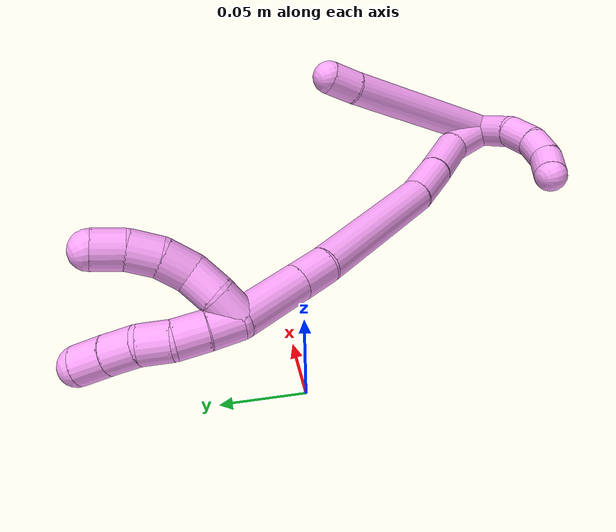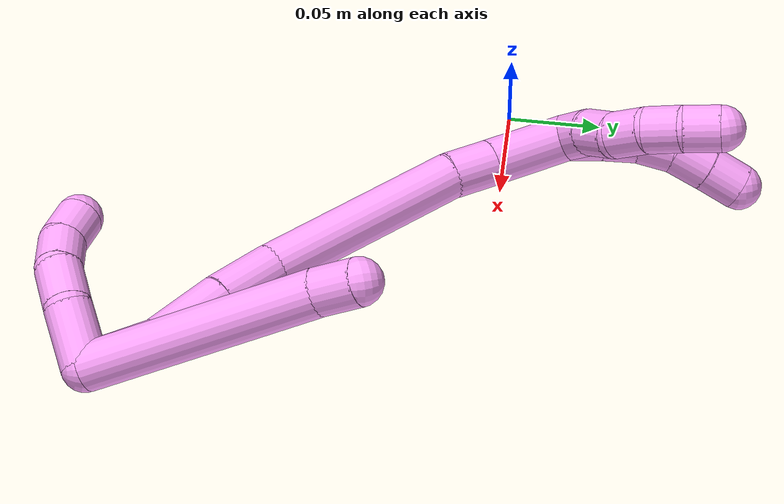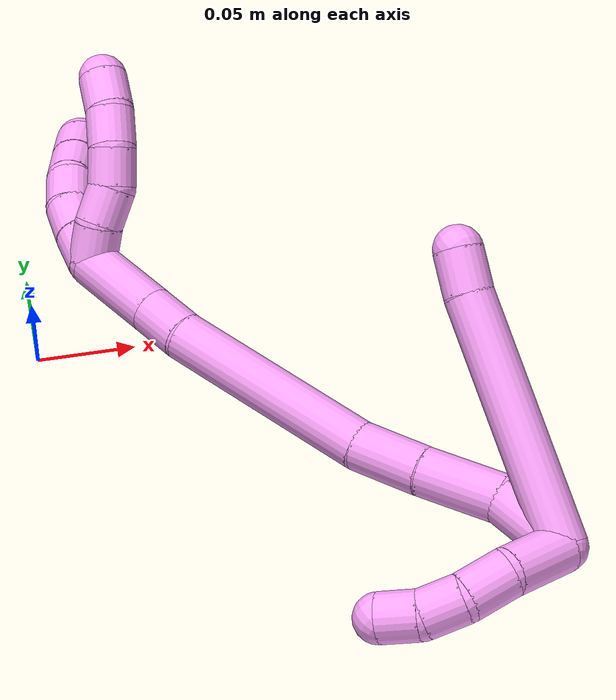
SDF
<sdf version="1.7">
 <world name="default">
  <model name="4">
   <static>0</static>
   <link name="4">
    <collision name="collision-cylinder-e_1_2_8">
     <pose>0.02626 -0.018918 -0.05494 2.80997 0.424469 1.82095</pose>
     <geometry><cylinder><radius>0.0125</radius><length>0.127528</length></cylinder></geometry>
     <surface>
      <friction><ode><mu>1.16</mu><mu2>1.16</mu2><slip1>0</slip1><slip2>0</slip2></ode></friction>
      <contact><ode><kp>1e+06</kp><kd>1</kd><max_vel>0</max_vel><min_depth>0.001</min_depth></ode></contact>
     </surface>
    </collision>
    <visual name="visual-cylinder-e_1_2_8">
     <pose>0.02626 -0.018918 -0.05494 2.80997 0.424469 1.82095</pose>
     <geometry><cylinder><radius>0.0125</radius><length>0.127528</length></cylinder></geometry>
     <material><ambient>1 0.65098 0.996078 1</ambient></material>
    </visual>
    <collision name="collision-cylinder-e_2_8_6">
     <pose>0.057114 -0.042398 -0.119062 2.68044 0.421146 1.47718</pose>
     <geometry><cylinder><radius>0.0125</radius><length>0.022472</length></cylinder></geometry>
     <surface>
      <friction><ode><mu>1.16</mu><mu2>1.16</mu2><slip1>0</slip1><slip2>0</slip2></ode></friction>
      <contact><ode><kp>1e+06</kp><kd>1</kd><max_vel>0</max_vel><min_depth>0.001</min_depth></ode></contact>
     </surface>
    </collision>
    <visual name="visual-cylinder-e_2_8_6">
     <pose>0.057114 -0.042398 -0.119062 2.68044 0.421146 1.47718</pose>
     <geometry><cylinder><radius>0.0125</radius><length>0.022472</length></cylinder></geometry>
     <material><ambient>1 0.65098 0.996078 1</ambient></material>
    </visual>
    <collision name="collision-cylinder-e_1_2_9">
     <pose>0.008988 0.014088 0.001308 -1.47819 0.565939 -0.518124</pose>
     <geometry><cylinder><radius>0.0125</radius><length>0.033523</length></cylinder></geometry>
     <surface>
      <friction><ode><mu>1.16</mu><mu2>1.16</mu2><slip1>0</slip1><slip2>0</slip2></ode></friction>
      <contact><ode><kp>1e+06</kp><kd>1</kd><max_vel>0</max_vel><min_depth>0.001</min_depth></ode></contact>
     </surface>
    </collision>
    <visual name="visual-cylinder-e_1_2_9">
     <pose>0.008988 0.014088 0.001308 -1.47819 0.565939 -0.518124</pose>
     <geometry><cylinder><radius>0.0125</radius><length>0.033523</length></cylinder></geometry>
     <material><ambient>1 0.65098 0.996078 1</ambient></material>
    </visual>
    <collision name="collision-cylinder-e_2_9_10">
     <pose>0.02106 0.03993 0.002611 -1.57128 0.256639 -0.256762</pose>
     <geometry><cylinder><radius>0.0125</radius><length>0.024306</length></cylinder></geometry>
     <surface>
      <friction><ode><mu>1.16</mu><mu2>1.16</mu2><slip1>0</slip1><slip2>0</slip2></ode></friction>
      <contact><ode><kp>1e+06</kp><kd>1</kd><max_vel>0</max_vel><min_depth>0.001</min_depth></ode></contact>
     </surface>
    </collision>
    <visual name="visual-cylinder-e_2_9_10">
     <pose>0.02106 0.03993 0.002611 -1.57128 0.256639 -0.256762</pose>
     <geometry><cylinder><radius>0.0125</radius><length>0.024306</length></cylinder></geometry>
     <material><ambient>1 0.65098 0.996078 1</ambient></material>
    </visual>
    <collision name="collision-cylinder-e_3_10_11">
     <pose>0.024845 0.062035 -0.000244 -1.83949 0.065075 -0.085394</pose>
     <geometry><cylinder><radius>0.0125</radius><length>0.021516</length></cylinder></geometry>
     <surface>
      <friction><ode><mu>1.16</mu><mu2>1.16</mu2><slip1>0</slip1><slip2>0</slip2></ode></friction>
      <contact><ode><kp>1e+06</kp><kd>1</kd><max_vel>0</max_vel><min_depth>0.001</min_depth></ode></contact>
     </surface>
    </collision>
    <visual name="visual-cylinder-e_3_10_11">
     <pose>0.024845 0.062035 -0.000244 -1.83949 0.065075 -0.085394</pose>
     <geometry><cylinder><radius>0.0125</radius><length>0.021516</length></cylinder></geometry>
     <material><ambient>1 0.65098 0.996078 1</ambient></material>
    </visual>
    <collision name="collision-cylinder-e_4_11_5">
     <pose>0.026139 0.080814 -0.009032 -2.18455 0.057591 -0.110939</pose>
     <geometry><cylinder><radius>0.0125</radius><length>0.020655</length></cylinder></geometry>
     <surface>
      <friction><ode><mu>1.16</mu><mu2>1.16</mu2><slip1>0</slip1><slip2>0</slip2></ode></friction>
      <contact><ode><kp>1e+06</kp><kd>1</kd><max_vel>0</max_vel><min_depth>0.001</min_depth></ode></contact>
     </surface>
    </collision>
    <visual name="visual-cylinder-e_4_11_5">
     <pose>0.026139 0.080814 -0.009032 -2.18455 0.057591 -0.110939</pose>
     <geometry><cylinder><radius>0.0125</radius><length>0.020655</length></cylinder></geometry>
     <material><ambient>1 0.65098 0.996078 1</ambient></material>
    </visual>
    <collision name="collision-cylinder-e_1_2_12">
     <pose>0.001052 0.003983 -0.019255 -2.93761 0.053452 -0.510979</pose>
     <geometry><cylinder><radius>0.0125</radius><length>0.039381</length></cylinder></geometry>
     <surface>
      <friction><ode><mu>1.16</mu><mu2>1.16</mu2><slip1>0</slip1><slip2>0</slip2></ode></friction>
      <contact><ode><kp>1e+06</kp><kd>1</kd><max_vel>0</max_vel><min_depth>0.001</min_depth></ode></contact>
     </surface>
    </collision>
    <visual name="visual-cylinder-e_1_2_12">
     <pose>0.001052 0.003983 -0.019255 -2.93761 0.053452 -0.510979</pose>
     <geometry><cylinder><radius>0.0125</radius><length>0.039381</length></cylinder></geometry>
     <material><ambient>1 0.65098 0.996078 1</ambient></material>
    </visual>
    <collision name="collision-cylinder-e_2_12_13">
     <pose>0.004382 0.018792 -0.056531 -2.60063 0.107926 -0.384791</pose>
     <geometry><cylinder><radius>0.0125</radius><length>0.042293</length></cylinder></geometry>
     <surface>
      <friction><ode><mu>1.16</mu><mu2>1.16</mu2><slip1>0</slip1><slip2>0</slip2></ode></friction>
      <contact><ode><kp>1e+06</kp><kd>1</kd><max_vel>0</max_vel><min_depth>0.001</min_depth></ode></contact>
     </surface>
    </collision>
    <visual name="visual-cylinder-e_2_12_13">
     <pose>0.004382 0.018792 -0.056531 -2.60063 0.107926 -0.384791</pose>
     <geometry><cylinder><radius>0.0125</radius><length>0.042293</length></cylinder></geometry>
     <material><ambient>1 0.65098 0.996078 1</ambient></material>
    </visual>
    <collision name="collision-cylinder-e_3_13_14">
     <pose>0.007657 0.037958 -0.090492 -2.65956 0.055364 -0.22436</pose>
     <geometry><cylinder><radius>0.0125</radius><length>0.036032</length></cylinder></geometry>
     <surface>
      <friction><ode><mu>1.16</mu><mu2>1.16</mu2><slip1>0</slip1><slip2>0</slip2></ode></friction>
      <contact><ode><kp>1e+06</kp><kd>1</kd><max_vel>0</max_vel><min_depth>0.001</min_depth></ode></contact>
     </surface>
    </collision>
    <visual name="visual-cylinder-e_3_13_14">
     <pose>0.007657 0.037958 -0.090492 -2.65956 0.055364 -0.22436</pose>
     <geometry><cylinder><radius>0.0125</radius><length>0.036032</length></cylinder></geometry>
     <material><ambient>1 0.65098 0.996078 1</ambient></material>
    </visual>
    <collision name="collision-cylinder-e_4_14_15">
     <pose>0.015584 0.064347 -0.158871 -2.81009 0.124321 -0.712392</pose>
     <geometry><cylinder><radius>0.0125</radius><length>0.111784</length></cylinder></geometry>
     <surface>
      <friction><ode><mu>1.16</mu><mu2>1.16</mu2><slip1>0</slip1><slip2>0</slip2></ode></friction>
      <contact><ode><kp>1e+06</kp><kd>1</kd><max_vel>0</max_vel><min_depth>0.001</min_depth></ode></contact>
     </surface>
    </collision>
    <visual name="visual-cylinder-e_4_14_15">
     <pose>0.015584 0.064347 -0.158871 -2.81009 0.124321 -0.712392</pose>
     <geometry><cylinder><radius>0.0125</radius><length>0.111784</length></cylinder></geometry>
     <material><ambient>1 0.65098 0.996078 1</ambient></material>
    </visual>
    <collision name="collision-cylinder-e_5_15_16">
     <pose>0.022909 0.084864 -0.223168 -2.9365 0.032576 -0.313972</pose>
     <geometry><cylinder><radius>0.0125</radius><length>0.024232</length></cylinder></geometry>
     <surface>
      <friction><ode><mu>1.16</mu><mu2>1.16</mu2><slip1>0</slip1><slip2>0</slip2></ode></friction>
      <contact><ode><kp>1e+06</kp><kd>1</kd><max_vel>0</max_vel><min_depth>0.001</min_depth></ode></contact>
     </surface>
    </collision>
    <visual name="visual-cylinder-e_5_15_16">
     <pose>0.022909 0.084864 -0.223168 -2.9365 0.032576 -0.313972</pose>
     <geometry><cylinder><radius>0.0125</radius><length>0.024232</length></cylinder></geometry>
     <material><ambient>1 0.65098 0.996078 1</ambient></material>
    </visual>
    <collision name="collision-cylinder-e_6_16_1">
     <pose>0.024286 0.092154 -0.257633 -2.93135 0.042469 -0.397264</pose>
     <geometry><cylinder><radius>0.0125</radius><length>0.046278</length></cylinder></geometry>
     <surface>
      <friction><ode><mu>1.16</mu><mu2>1.16</mu2><slip1>0</slip1><slip2>0</slip2></ode></friction>
      <contact><ode><kp>1e+06</kp><kd>1</kd><max_vel>0</max_vel><min_depth>0.001</min_depth></ode></contact>
     </surface>
    </collision>
    <visual name="visual-cylinder-e_6_16_1">
     <pose>0.024286 0.092154 -0.257633 -2.93135 0.042469 -0.397264</pose>
     <geometry><cylinder><radius>0.0125</radius><length>0.046278</length></cylinder></geometry>
     <material><ambient>1 0.65098 0.996078 1</ambient></material>
    </visual>
    <collision name="collision-cylinder-e_1_1_17">
     <pose>0.024505 0.095476 -0.290099 2.9903 -0.076491 -0.935068</pose>
     <geometry><cylinder><radius>0.0125</radius><length>0.02</length></cylinder></geometry>
     <surface>
      <friction><ode><mu>1.16</mu><mu2>1.16</mu2><slip1>0</slip1><slip2>0</slip2></ode></friction>
      <contact><ode><kp>1e+06</kp><kd>1</kd><max_vel>0</max_vel><min_depth>0.001</min_depth></ode></contact>
     </surface>
    </collision>
    <visual name="visual-cylinder-e_1_1_17">
     <pose>0.024505 0.095476 -0.290099 2.9903 -0.076491 -0.935068</pose>
     <geometry><cylinder><radius>0.0125</radius><length>0.02</length></cylinder></geometry>
     <material><ambient>1 0.65098 0.996078 1</ambient></material>
    </visual>
    <collision name="collision-cylinder-e_2_17_18">
     <pose>0.02268 0.091815 -0.309662 2.9228 -0.10622 -0.901527</pose>
     <geometry><cylinder><radius>0.0125</radius><length>0.02</length></cylinder></geometry>
     <surface>
      <friction><ode><mu>1.16</mu><mu2>1.16</mu2><slip1>0</slip1><slip2>0</slip2></ode></friction>
      <contact><ode><kp>1e+06</kp><kd>1</kd><max_vel>0</max_vel><min_depth>0.001</min_depth></ode></contact>
     </surface>
    </collision>
    <visual name="visual-cylinder-e_2_17_18">
     <pose>0.02268 0.091815 -0.309662 2.9228 -0.10622 -0.901527</pose>
     <geometry><cylinder><radius>0.0125</radius><length>0.02</length></cylinder></geometry>
     <material><ambient>1 0.65098 0.996078 1</ambient></material>
    </visual>
    <collision name="collision-cylinder-e_3_18_19">
     <pose>0.019822 0.085137 -0.328106 2.66417 -0.180807 -0.713164</pose>
     <geometry><cylinder><radius>0.0125</radius><length>0.02</length></cylinder></geometry>
     <surface>
      <friction><ode><mu>1.16</mu><mu2>1.16</mu2><slip1>0</slip1><slip2>0</slip2></ode></friction>
      <contact><ode><kp>1e+06</kp><kd>1</kd><max_vel>0</max_vel><min_depth>0.001</min_depth></ode></contact>
     </surface>
    </collision>
    <visual name="visual-cylinder-e_3_18_19">
     <pose>0.019822 0.085137 -0.328106 2.66417 -0.180807 -0.713164</pose>
     <geometry><cylinder><radius>0.0125</radius><length>0.02</length></cylinder></geometry>
     <material><ambient>1 0.65098 0.996078 1</ambient></material>
    </visual>
    <collision name="collision-cylinder-e_4_19_20">
     <pose>0.013565 0.076393 -0.344734 2.65014 -0.462166 -1.507</pose>
     <geometry><cylinder><radius>0.0125</radius><length>0.02</length></cylinder></geometry>
     <surface>
      <friction><ode><mu>1.16</mu><mu2>1.16</mu2><slip1>0</slip1><slip2>0</slip2></ode></friction>
      <contact><ode><kp>1e+06</kp><kd>1</kd><max_vel>0</max_vel><min_depth>0.001</min_depth></ode></contact>
     </surface>
    </collision>
    <visual name="visual-cylinder-e_4_19_20">
     <pose>0.013565 0.076393 -0.344734 2.65014 -0.462166 -1.507</pose>
     <geometry><cylinder><radius>0.0125</radius><length>0.02</length></cylinder></geometry>
     <material><ambient>1 0.65098 0.996078 1</ambient></material>
    </visual>
    <collision name="collision-cylinder-e_5_20_4">
     <pose>0.004319 0.068116 -0.360414 2.66172 -0.499146 -1.61178</pose>
     <geometry><cylinder><radius>0.0125</radius><length>0.02</length></cylinder></geometry>
     <surface>
      <friction><ode><mu>1.16</mu><mu2>1.16</mu2><slip1>0</slip1><slip2>0</slip2></ode></friction>
      <contact><ode><kp>1e+06</kp><kd>1</kd><max_vel>0</max_vel><min_depth>0.001</min_depth></ode></contact>
     </surface>
    </collision>
    <visual name="visual-cylinder-e_5_20_4">
     <pose>0.004319 0.068116 -0.360414 2.66172 -0.499146 -1.61178</pose>
     <geometry><cylinder><radius>0.0125</radius><length>0.02</length></cylinder></geometry>
     <material><ambient>1 0.65098 0.996078 1</ambient></material>
    </visual>
    <collision name="collision-cylinder-e_1_1_21">
     <pose>0.030985 0.089844 -0.284294 2.08724 0.608418 0.989209</pose>
     <geometry><cylinder><radius>0.0125</radius><length>0.02</length></cylinder></geometry>
     <surface>
      <friction><ode><mu>1.16</mu><mu2>1.16</mu2><slip1>0</slip1><slip2>0</slip2></ode></friction>
      <contact><ode><kp>1e+06</kp><kd>1</kd><max_vel>0</max_vel><min_depth>0.001</min_depth></ode></contact>
     </surface>
    </collision>
    <visual name="visual-cylinder-e_1_1_21">
     <pose>0.030985 0.089844 -0.284294 2.08724 0.608418 0.989209</pose>
     <geometry><cylinder><radius>0.0125</radius><length>0.02</length></cylinder></geometry>
     <material><ambient>1 0.65098 0.996078 1</ambient></material>
    </visual>
    <collision name="collision-cylinder-e_2_21_22">
     <pose>0.0404 0.074356 -0.292415 2.02415 0.378962 0.595305</pose>
     <geometry><cylinder><radius>0.0125</radius><length>0.02</length></cylinder></geometry>
     <surface>
      <friction><ode><mu>1.16</mu><mu2>1.16</mu2><slip1>0</slip1><slip2>0</slip2></ode></friction>
      <contact><ode><kp>1e+06</kp><kd>1</kd><max_vel>0</max_vel><min_depth>0.001</min_depth></ode></contact>
     </surface>
    </collision>
    <visual name="visual-cylinder-e_2_21_22">
     <pose>0.0404 0.074356 -0.292415 2.02415 0.378962 0.595305</pose>
     <geometry><cylinder><radius>0.0125</radius><length>0.02</length></cylinder></geometry>
     <material><ambient>1 0.65098 0.996078 1</ambient></material>
    </visual>
    <collision name="collision-cylinder-e_3_22_23">
     <pose>0.048463 0.059903 -0.303097 2.39638 0.451524 1.06253</pose>
     <geometry><cylinder><radius>0.0125</radius><length>0.02</length></cylinder></geometry>
     <surface>
      <friction><ode><mu>1.16</mu><mu2>1.16</mu2><slip1>0</slip1><slip2>0</slip2></ode></friction>
      <contact><ode><kp>1e+06</kp><kd>1</kd><max_vel>0</max_vel><min_depth>0.001</min_depth></ode></contact>
     </surface>
    </collision>
    <visual name="visual-cylinder-e_3_22_23">
     <pose>0.048463 0.059903 -0.303097 2.39638 0.451524 1.06253</pose>
     <geometry><cylinder><radius>0.0125</radius><length>0.02</length></cylinder></geometry>
     <material><ambient>1 0.65098 0.996078 1</ambient></material>
    </visual>
    <collision name="collision-cylinder-e_4_23_24">
     <pose>0.055244 0.048532 -0.317858 2.56762 0.244216 0.788116</pose>
     <geometry><cylinder><radius>0.0125</radius><length>0.02</length></cylinder></geometry>
     <surface>
      <friction><ode><mu>1.16</mu><mu2>1.16</mu2><slip1>0</slip1><slip2>0</slip2></ode></friction>
      <contact><ode><kp>1e+06</kp><kd>1</kd><max_vel>0</max_vel><min_depth>0.001</min_depth></ode></contact>
     </surface>
    </collision>
    <visual name="visual-cylinder-e_4_23_24">
     <pose>0.055244 0.048532 -0.317858 2.56762 0.244216 0.788116</pose>
     <geometry><cylinder><radius>0.0125</radius><length>0.02</length></cylinder></geometry>
     <material><ambient>1 0.65098 0.996078 1</ambient></material>
    </visual>
    <collision name="collision-cylinder-e_5_24_3">
     <pose>0.058614 0.039473 -0.335211 2.75092 0.095374 0.473355</pose>
     <geometry><cylinder><radius>0.0125</radius><length>0.02</length></cylinder></geometry>
     <surface>
      <friction><ode><mu>1.16</mu><mu2>1.16</mu2><slip1>0</slip1><slip2>0</slip2></ode></friction>
      <contact><ode><kp>1e+06</kp><kd>1</kd><max_vel>0</max_vel><min_depth>0.001</min_depth></ode></contact>
     </surface>
    </collision>
    <visual name="visual-cylinder-e_5_24_3">
     <pose>0.058614 0.039473 -0.335211 2.75092 0.095374 0.473355</pose>
     <geometry><cylinder><radius>0.0125</radius><length>0.02</length></cylinder></geometry>
     <material><ambient>1 0.65098 0.996078 1</ambient></material>
    </visual>
    <collision name="collision-sphere-3">
     <pose>0.059567 0.035682 -0.344415 0 -0 0</pose>
     <geometry><sphere><radius>0.0125</radius></sphere></geometry>
     <surface>
      <friction><ode><mu>1.16</mu><mu2>1.16</mu2><slip1>0</slip1><slip2>0</slip2></ode></friction>
      <contact><ode><kp>1e+06</kp><kd>1</kd><max_vel>0</max_vel><min_depth>0.001</min_depth></ode></contact>
     </surface>
    </collision>
    <visual name="visual-sphere-3">
     <pose>0.059567 0.035682 -0.344415 0 -0 0</pose>
     <geometry><sphere><radius>0.0125</radius></sphere></geometry>
     <material><ambient>1 0.65098 0.996078 1</ambient></material>
    </visual>
    <collision name="collision-sphere-24">
     <pose>0.057662 0.043264 -0.326006 0 -0 0</pose>
     <geometry><sphere><radius>0.0125</radius></sphere></geometry>
     <surface>
      <friction><ode><mu>1.16</mu><mu2>1.16</mu2><slip1>0</slip1><slip2>0</slip2></ode></friction>
      <contact><ode><kp>1e+06</kp><kd>1</kd><max_vel>0</max_vel><min_depth>0.001</min_depth></ode></contact>
     </surface>
    </collision>
    <visual name="visual-sphere-24">
     <pose>0.057662 0.043264 -0.326006 0 -0 0</pose>
     <geometry><sphere><radius>0.0125</radius></sphere></geometry>
     <material><ambient>1 0.65098 0.996078 1</ambient></material>
    </visual>
    <collision name="collision-sphere-23">
     <pose>0.052826 0.053801 -0.309709 0 -0 0</pose>
     <geometry><sphere><radius>0.0125</radius></sphere></geometry>
     <surface>
      <friction><ode><mu>1.16</mu><mu2>1.16</mu2><slip1>0</slip1><slip2>0</slip2></ode></friction>
      <contact><ode><kp>1e+06</kp><kd>1</kd><max_vel>0</max_vel><min_depth>0.001</min_depth></ode></contact>
     </surface>
    </collision>
    <visual name="visual-sphere-23">
     <pose>0.052826 0.053801 -0.309709 0 -0 0</pose>
     <geometry><sphere><radius>0.0125</radius></sphere></geometry>
     <material><ambient>1 0.65098 0.996078 1</ambient></material>
    </visual>
    <collision name="collision-sphere-22">
     <pose>0.044099 0.066004 -0.296484 0 -0 0</pose>
     <geometry><sphere><radius>0.0125</radius></sphere></geometry>
     <surface>
      <friction><ode><mu>1.16</mu><mu2>1.16</mu2><slip1>0</slip1><slip2>0</slip2></ode></friction>
      <contact><ode><kp>1e+06</kp><kd>1</kd><max_vel>0</max_vel><min_depth>0.001</min_depth></ode></contact>
     </surface>
    </collision>
    <visual name="visual-sphere-22">
     <pose>0.044099 0.066004 -0.296484 0 -0 0</pose>
     <geometry><sphere><radius>0.0125</radius></sphere></geometry>
     <material><ambient>1 0.65098 0.996078 1</ambient></material>
    </visual>
    <collision name="collision-sphere-21">
     <pose>0.0367 0.082708 -0.288346 0 -0 0</pose>
     <geometry><sphere><radius>0.0125</radius></sphere></geometry>
     <surface>
      <friction><ode><mu>1.16</mu><mu2>1.16</mu2><slip1>0</slip1><slip2>0</slip2></ode></friction>
      <contact><ode><kp>1e+06</kp><kd>1</kd><max_vel>0</max_vel><min_depth>0.001</min_depth></ode></contact>
     </surface>
    </collision>
    <visual name="visual-sphere-21">
     <pose>0.0367 0.082708 -0.288346 0 -0 0</pose>
     <geometry><sphere><radius>0.0125</radius></sphere></geometry>
     <material><ambient>1 0.65098 0.996078 1</ambient></material>
    </visual>
    <collision name="collision-sphere-4">
     <pose>-0.000468 0.064062 -0.368202 0 -0 0</pose>
     <geometry><sphere><radius>0.0125</radius></sphere></geometry>
     <surface>
      <friction><ode><mu>1.16</mu><mu2>1.16</mu2><slip1>0</slip1><slip2>0</slip2></ode></friction>
      <contact><ode><kp>1e+06</kp><kd>1</kd><max_vel>0</max_vel><min_depth>0.001</min_depth></ode></contact>
     </surface>
    </collision>
    <visual name="visual-sphere-4">
     <pose>-0.000468 0.064062 -0.368202 0 -0 0</pose>
     <geometry><sphere><radius>0.0125</radius></sphere></geometry>
     <material><ambient>1 0.65098 0.996078 1</ambient></material>
    </visual>
    <collision name="collision-sphere-20">
     <pose>0.009106 0.072169 -0.352626 0 -0 0</pose>
     <geometry><sphere><radius>0.0125</radius></sphere></geometry>
     <surface>
      <friction><ode><mu>1.16</mu><mu2>1.16</mu2><slip1>0</slip1><slip2>0</slip2></ode></friction>
      <contact><ode><kp>1e+06</kp><kd>1</kd><max_vel>0</max_vel><min_depth>0.001</min_depth></ode></contact>
     </surface>
    </collision>
    <visual name="visual-sphere-20">
     <pose>0.009106 0.072169 -0.352626 0 -0 0</pose>
     <geometry><sphere><radius>0.0125</radius></sphere></geometry>
     <material><ambient>1 0.65098 0.996078 1</ambient></material>
    </visual>
    <collision name="collision-sphere-11">
     <pose>0.025544 0.072385 -0.003094 0 -0 0</pose>
     <geometry><sphere><radius>0.0125</radius></sphere></geometry>
     <surface>
      <friction><ode><mu>1.16</mu><mu2>1.16</mu2><slip1>0</slip1><slip2>0</slip2></ode></friction>
      <contact><ode><kp>1e+06</kp><kd>1</kd><max_vel>0</max_vel><min_depth>0.001</min_depth></ode></contact>
     </surface>
    </collision>
    <visual name="visual-sphere-11">
     <pose>0.025544 0.072385 -0.003094 0 -0 0</pose>
     <geometry><sphere><radius>0.0125</radius></sphere></geometry>
     <material><ambient>1 0.65098 0.996078 1</ambient></material>
    </visual>
    <collision name="collision-sphere-10">
     <pose>0.024145 0.051685 0.002605 0 -0 0</pose>
     <geometry><sphere><radius>0.0125</radius></sphere></geometry>
     <surface>
      <friction><ode><mu>1.16</mu><mu2>1.16</mu2><slip1>0</slip1><slip2>0</slip2></ode></friction>
      <contact><ode><kp>1e+06</kp><kd>1</kd><max_vel>0</max_vel><min_depth>0.001</min_depth></ode></contact>
     </surface>
    </collision>
    <visual name="visual-sphere-10">
     <pose>0.024145 0.051685 0.002605 0 -0 0</pose>
     <geometry><sphere><radius>0.0125</radius></sphere></geometry>
     <material><ambient>1 0.65098 0.996078 1</ambient></material>
    </visual>
    <collision name="collision-sphere-6">
     <pose>0.061707 -0.046961 -0.128245 0 -0 0</pose>
     <geometry><sphere><radius>0.0125</radius></sphere></geometry>
     <surface>
      <friction><ode><mu>1.16</mu><mu2>1.16</mu2><slip1>0</slip1><slip2>0</slip2></ode></friction>
      <contact><ode><kp>1e+06</kp><kd>1</kd><max_vel>0</max_vel><min_depth>0.001</min_depth></ode></contact>
     </surface>
    </collision>
    <visual name="visual-sphere-6">
     <pose>0.061707 -0.046961 -0.128245 0 -0 0</pose>
     <geometry><sphere><radius>0.0125</radius></sphere></geometry>
     <material><ambient>1 0.65098 0.996078 1</ambient></material>
    </visual>
    <collision name="collision-sphere-9">
     <pose>0.017975 0.028175 0.002617 0 -0 0</pose>
     <geometry><sphere><radius>0.0125</radius></sphere></geometry>
     <surface>
      <friction><ode><mu>1.16</mu><mu2>1.16</mu2><slip1>0</slip1><slip2>0</slip2></ode></friction>
      <contact><ode><kp>1e+06</kp><kd>1</kd><max_vel>0</max_vel><min_depth>0.001</min_depth></ode></contact>
     </surface>
    </collision>
    <visual name="visual-sphere-9">
     <pose>0.017975 0.028175 0.002617 0 -0 0</pose>
     <geometry><sphere><radius>0.0125</radius></sphere></geometry>
     <material><ambient>1 0.65098 0.996078 1</ambient></material>
    </visual>
    <collision name="collision-sphere-2">
     <geometry><sphere><radius>0.0125</radius></sphere></geometry>
     <surface>
      <friction><ode><mu>1.16</mu><mu2>1.16</mu2><slip1>0</slip1><slip2>0</slip2></ode></friction>
      <contact><ode><kp>1e+06</kp><kd>1</kd><max_vel>0</max_vel><min_depth>0.001</min_depth></ode></contact>
     </surface>
    </collision>
    <visual name="visual-sphere-2">
     <geometry><sphere><radius>0.0125</radius></sphere></geometry>
     <material><ambient>1 0.65098 0.996078 1</ambient></material>
    </visual>
    <collision name="collision-sphere-19">
     <pose>0.018024 0.080617 -0.336843 0 -0 0</pose>
     <geometry><sphere><radius>0.0125</radius></sphere></geometry>
     <surface>
      <friction><ode><mu>1.16</mu><mu2>1.16</mu2><slip1>0</slip1><slip2>0</slip2></ode></friction>
      <contact><ode><kp>1e+06</kp><kd>1</kd><max_vel>0</max_vel><min_depth>0.001</min_depth></ode></contact>
     </surface>
    </collision>
    <visual name="visual-sphere-19">
     <pose>0.018024 0.080617 -0.336843 0 -0 0</pose>
     <geometry><sphere><radius>0.0125</radius></sphere></geometry>
     <material><ambient>1 0.65098 0.996078 1</ambient></material>
    </visual>
    <collision name="collision-sphere-8">
     <pose>0.052521 -0.037835 -0.109879 0 -0 0</pose>
     <geometry><sphere><radius>0.0125</radius></sphere></geometry>
     <surface>
      <friction><ode><mu>1.16</mu><mu2>1.16</mu2><slip1>0</slip1><slip2>0</slip2></ode></friction>
      <contact><ode><kp>1e+06</kp><kd>1</kd><max_vel>0</max_vel><min_depth>0.001</min_depth></ode></contact>
     </surface>
    </collision>
    <visual name="visual-sphere-8">
     <pose>0.052521 -0.037835 -0.109879 0 -0 0</pose>
     <geometry><sphere><radius>0.0125</radius></sphere></geometry>
     <material><ambient>1 0.65098 0.996078 1</ambient></material>
    </visual>
    <collision name="collision-sphere-5">
     <pose>0.026733 0.089242 -0.014971 0 -0 0</pose>
     <geometry><sphere><radius>0.0125</radius></sphere></geometry>
     <surface>
      <friction><ode><mu>1.16</mu><mu2>1.16</mu2><slip1>0</slip1><slip2>0</slip2></ode></friction>
      <contact><ode><kp>1e+06</kp><kd>1</kd><max_vel>0</max_vel><min_depth>0.001</min_depth></ode></contact>
     </surface>
    </collision>
    <visual name="visual-sphere-5">
     <pose>0.026733 0.089242 -0.014971 0 -0 0</pose>
     <geometry><sphere><radius>0.0125</radius></sphere></geometry>
     <material><ambient>1 0.65098 0.996078 1</ambient></material>
    </visual>
    <collision name="collision-sphere-12">
     <pose>0.002104 0.007966 -0.03851 0 -0 0</pose>
     <geometry><sphere><radius>0.0125</radius></sphere></geometry>
     <surface>
      <friction><ode><mu>1.16</mu><mu2>1.16</mu2><slip1>0</slip1><slip2>0</slip2></ode></friction>
      <contact><ode><kp>1e+06</kp><kd>1</kd><max_vel>0</max_vel><min_depth>0.001</min_depth></ode></contact>
     </surface>
    </collision>
    <visual name="visual-sphere-12">
     <pose>0.002104 0.007966 -0.03851 0 -0 0</pose>
     <geometry><sphere><radius>0.0125</radius></sphere></geometry>
     <material><ambient>1 0.65098 0.996078 1</ambient></material>
    </visual>
    <collision name="collision-sphere-13">
     <pose>0.00666 0.029619 -0.074553 0 -0 0</pose>
     <geometry><sphere><radius>0.0125</radius></sphere></geometry>
     <surface>
      <friction><ode><mu>1.16</mu><mu2>1.16</mu2><slip1>0</slip1><slip2>0</slip2></ode></friction>
      <contact><ode><kp>1e+06</kp><kd>1</kd><max_vel>0</max_vel><min_depth>0.001</min_depth></ode></contact>
     </surface>
    </collision>
    <visual name="visual-sphere-13">
     <pose>0.00666 0.029619 -0.074553 0 -0 0</pose>
     <geometry><sphere><radius>0.0125</radius></sphere></geometry>
     <material><ambient>1 0.65098 0.996078 1</ambient></material>
    </visual>
    <collision name="collision-sphere-14">
     <pose>0.008653 0.046297 -0.10643 0 -0 0</pose>
     <geometry><sphere><radius>0.0125</radius></sphere></geometry>
     <surface>
      <friction><ode><mu>1.16</mu><mu2>1.16</mu2><slip1>0</slip1><slip2>0</slip2></ode></friction>
      <contact><ode><kp>1e+06</kp><kd>1</kd><max_vel>0</max_vel><min_depth>0.001</min_depth></ode></contact>
     </surface>
    </collision>
    <visual name="visual-sphere-14">
     <pose>0.008653 0.046297 -0.10643 0 -0 0</pose>
     <geometry><sphere><radius>0.0125</radius></sphere></geometry>
     <material><ambient>1 0.65098 0.996078 1</ambient></material>
    </visual>
    <collision name="collision-sphere-15">
     <pose>0.022515 0.082397 -0.211312 0 -0 0</pose>
     <geometry><sphere><radius>0.0125</radius></sphere></geometry>
     <surface>
      <friction><ode><mu>1.16</mu><mu2>1.16</mu2><slip1>0</slip1><slip2>0</slip2></ode></friction>
      <contact><ode><kp>1e+06</kp><kd>1</kd><max_vel>0</max_vel><min_depth>0.001</min_depth></ode></contact>
     </surface>
    </collision>
    <visual name="visual-sphere-15">
     <pose>0.022515 0.082397 -0.211312 0 -0 0</pose>
     <geometry><sphere><radius>0.0125</radius></sphere></geometry>
     <material><ambient>1 0.65098 0.996078 1</ambient></material>
    </visual>
    <collision name="collision-sphere-16">
     <pose>0.023304 0.08733 -0.235024 0 -0 0</pose>
     <geometry><sphere><radius>0.0125</radius></sphere></geometry>
     <surface>
      <friction><ode><mu>1.16</mu><mu2>1.16</mu2><slip1>0</slip1><slip2>0</slip2></ode></friction>
      <contact><ode><kp>1e+06</kp><kd>1</kd><max_vel>0</max_vel><min_depth>0.001</min_depth></ode></contact>
     </surface>
    </collision>
    <visual name="visual-sphere-16">
     <pose>0.023304 0.08733 -0.235024 0 -0 0</pose>
     <geometry><sphere><radius>0.0125</radius></sphere></geometry>
     <material><ambient>1 0.65098 0.996078 1</ambient></material>
    </visual>
    <collision name="collision-sphere-1">
     <pose>0.025269 0.096979 -0.280242 0 -0 0</pose>
     <geometry><sphere><radius>0.0125</radius></sphere></geometry>
     <surface>
      <friction><ode><mu>1.16</mu><mu2>1.16</mu2><slip1>0</slip1><slip2>0</slip2></ode></friction>
      <contact><ode><kp>1e+06</kp><kd>1</kd><max_vel>0</max_vel><min_depth>0.001</min_depth></ode></contact>
     </surface>
    </collision>
    <visual name="visual-sphere-1">
     <pose>0.025269 0.096979 -0.280242 0 -0 0</pose>
     <geometry><sphere><radius>0.0125</radius></sphere></geometry>
     <material><ambient>1 0.65098 0.996078 1</ambient></material>
    </visual>
    <collision name="collision-sphere-18">
     <pose>0.02162 0.089657 -0.319369 0 -0 0</pose>
     <geometry><sphere><radius>0.0125</radius></sphere></geometry>
     <surface>
      <friction><ode><mu>1.16</mu><mu2>1.16</mu2><slip1>0</slip1><slip2>0</slip2></ode></friction>
      <contact><ode><kp>1e+06</kp><kd>1</kd><max_vel>0</max_vel><min_depth>0.001</min_depth></ode></contact>
     </surface>
    </collision>
    <visual name="visual-sphere-18">
     <pose>0.02162 0.089657 -0.319369 0 -0 0</pose>
     <geometry><sphere><radius>0.0125</radius></sphere></geometry>
     <material><ambient>1 0.65098 0.996078 1</ambient></material>
    </visual>
    <collision name="collision-sphere-17">
     <pose>0.023741 0.093974 -0.299956 0 -0 0</pose>
     <geometry><sphere><radius>0.0125</radius></sphere></geometry>
     <surface>
      <friction><ode><mu>1.16</mu><mu2>1.16</mu2><slip1>0</slip1><slip2>0</slip2></ode></friction>
      <contact><ode><kp>1e+06</kp><kd>1</kd><max_vel>0</max_vel><min_depth>0.001</min_depth></ode></contact>
     </surface>
    </collision>
    <visual name="visual-sphere-17">
     <pose>0.023741 0.093974 -0.299956 0 -0 0</pose>
     <geometry><sphere><radius>0.0125</radius></sphere></geometry>
     <material><ambient>1 0.65098 0.996078 1</ambient></material>
    </visual>
    <inertial>
     <pose>0.022421 0.041994 -0.152778 0 -0 0</pose>
     <mass>0.75</mass>
     <inertia>
      <ixx>0.00017</ixx>
      <ixy>0</ixy>
      <ixz>0</ixz>
      <iyy>1.9e-05</iyy>
      <iyz>0</iyz>
      <izz>-0.000137</izz>
     </inertia>
    </inertial>
   </link>
   <pose>0.229511 -0.189097 0.065937 -1.28924 -1.23493 -3.03132</pose>
  </model>
 </world>
</sdf>
